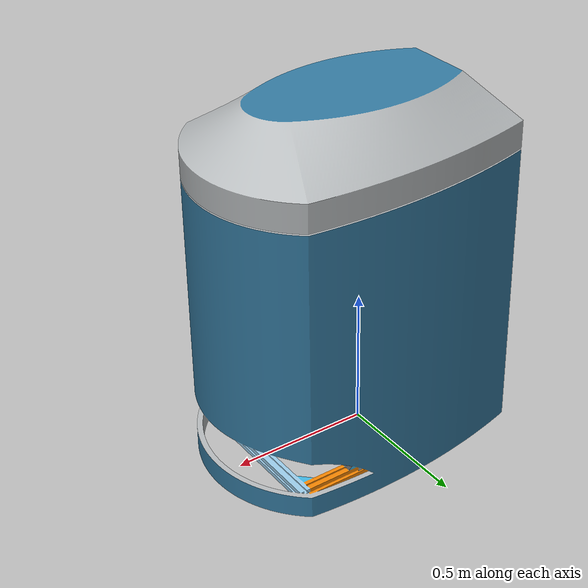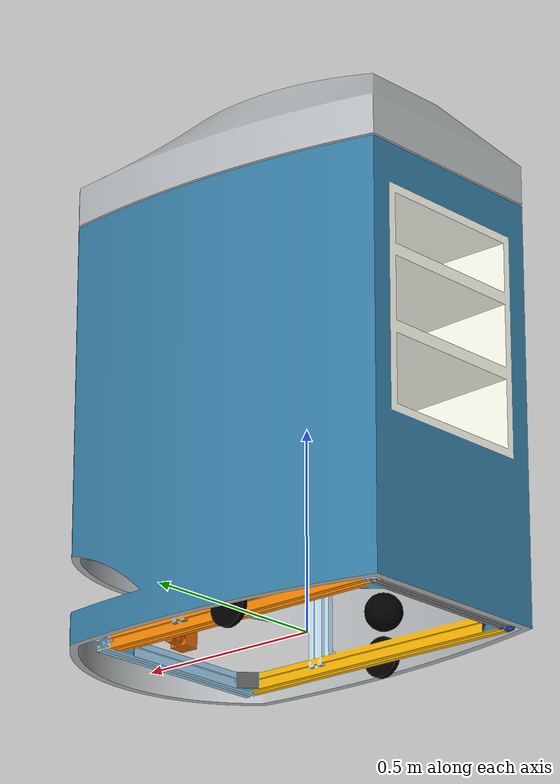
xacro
<?xml version='1.0'?>

<robot name="robot" xmlns:xacro="http://www.ros.org/wiki/xacro">

  <xacro:include filename="$(find robot)/urdf/robot.gazebo" />

  <material name="black">
    <color rgba="0 0 0 1"/>
  </material>

  <link name='robot_footprint'> </link>

  <joint name="robot_footprint_joint" type="fixed">
    <origin xyz="0 0 0" rpy="1.57 0 3.1415" />
<!-- x poits towards back of body, y upwards -->
    <parent link="robot_footprint"/>
    <child link="robot_body" />
  </joint>

  <link name='robot_body'>
    <pose>0 0 0 0 0 0</pose>

    <inertial>
      <mass value="9"/>
      <origin xyz="0 0 0" rpy=" 0 0 0"/>
      <inertia
          ixx="0.4298" ixy="0" ixz="0"
          iyy="0.207" iyz="0"
          izz="0.236"
      />
    </inertial>

    <collision name='robot_collision'>
      <origin xyz="0 0 0" rpy=" 0 0 0"/>
      <geometry>
        <mesh filename="package://robot/meshes/chassis.dae"/>
      </geometry>
    </collision>

    <visual name='robot_visual'>
      <origin xyz="0 0 0" rpy=" 0 0 0"/>
      <geometry>
        <mesh filename="package://robot/meshes/chassis.dae"/>
      </geometry>
    </visual>
  </link>

  <link name='left_wheel'>
    <pose>0 0 0 0 0 0</pose>

    <inertial>
      <mass value="5.35"/>
      <origin xyz="0 0 0" rpy="0 0 0"/>
      <inertia
          ixx="0.000225" ixy="0" ixz="0"
          iyy="0.000225" iyz="0"
          izz="0.0004375"
      />
    </inertial>

    <collision name='left_wheel_collision'>
      <origin xyz="0 0 0" rpy="0 0 0"/>
      <geometry>
        <cylinder radius="0.05" length="0.015"/>
      </geometry>
    </collision>

    <visual name='left_wheel_visual'>
      <origin xyz="0 0 0" rpy="0 0 0"/>
      <geometry>
        <cylinder radius="0.05" length="0.015"/>
      </geometry>
      <material name="black"/>
    </visual>
  </link>

  <link name='right_wheel'>
    <pose>0 0 0 0 0 0</pose>

    <inertial>
      <mass value="5.35"/>
      <origin xyz="0 0 0" rpy="0 0 0"/>
      <inertia
          ixx="0.000225" ixy="0" ixz="0"
          iyy="0.000225" iyz="0"
          izz="0.0004375"
      />
    </inertial>

    <collision name='right_wheel_collision'>
      <origin xyz="0 0 0" rpy="0 0 0"/>
      <geometry>
        <cylinder radius="0.05" length="0.015"/>
      </geometry>
    </collision>

    <visual name='right_wheel_visual'>
      <origin xyz="0 0 0" rpy="0 0 0"/>
      <geometry>
        <cylinder radius="0.05" length="0.015"/>
      </geometry>
      <material name="black"/>
    </visual>
  </link>

  <link name='omni_wheel'>
    <pose>0 0 0 0 0 0</pose>

    <inertial>
      <mass value="0.35"/>
      <origin xyz="0 0 0" rpy="0 0 0"/>
      <inertia
          ixx="0.0056" ixy="0" ixz="0"
          iyy="0.0056" iyz="0"
          izz="0.0056"
      />
    </inertial>

    <collision name='omni_wheel_collision'>
      <origin xyz="0 0 0" rpy="0 0 0"/>
      <geometry>
        <sphere radius="0.045"/>
      </geometry>
    </collision>

    <visual name='omni_wheel_visual'>
      <origin xyz="0 0 0" rpy="0 0 0"/>
      <geometry>
        <sphere radius="0.045"/>
      </geometry>
      <material name="black"/>
    </visual>
  </link>

<!-- links for sensors -->

  <link name='hokuyo'>
    <pose>0 0 0 0 0 0</pose>

    <inertial>
      <mass value="1e-5"/>
      <origin xyz="0 0 0" rpy="0 0 0"/>
      <inertia
          ixx="1e-6" ixy="0" ixz="0"
          iyy="1e-6" iyz="0"
          izz="1e-6"
      />
    </inertial>

    <collision name='LIDAR_collision'>
      <origin xyz="0 0 0" rpy="0 0 0"/>
      <geometry>
        <mesh filename="package://robot/meshes/hokuyo.dae"/>
      </geometry>
    </collision>

    <visual name='LIDAR_visual'>
      <origin xyz="0 0 0" rpy="0 0 0"/>
      <geometry>
        <mesh filename="package://robot/meshes/hokuyo.dae"/>
      </geometry>
    </visual>
  </link>

  <joint type="continuous" name="left_wheel_hinge">
    <origin xyz="0 0 0.27" rpy="0 0 0"/>
    <child link="left_wheel"/>
    <parent link="robot_body"/>
    <axis xyz="0 0 1" rpy="0 0 0"/>
    <limit effort="10000" velocity="1000"/>
    <dynamics damping="1.0" friction="1.0"/>
  </joint>

  <joint type="continuous" name="right_wheel_hinge">
    <origin xyz="0 0 -0.27" rpy="0 0 0"/>
    <child link="right_wheel"/>
    <parent link="robot_body"/>
    <axis xyz="0 0 1" rpy="0 0 0"/>
    <limit effort="10000" velocity="1000"/>
    <dynamics damping="1.0" friction="1.0"/>
  </joint>
  <joint type="continuous" name="omni_wheel_hinge">
    <origin xyz="0.233497 0 0" rpy="0.000212 -0.118296 -0.001802"/>
    <child link="omni_wheel"/>
    <parent link="robot_body"/>
    <axis xyz="0 0 1" rpy="0 0 0"/>
    <limit effort="10000" velocity="1000"/>
    <dynamics damping="1.0" friction="1.0"/>
  </joint>
  <joint name="hokuyo_joint" type="fixed">
    <origin xyz="-0.409 0.07 0" rpy="-1.57 3.14 0"/>
    <parent link="robot_body"/>
    <child link="hokuyo"/>
  </joint>

  <gazebo reference="left_wheel">
    <material>Gazebo/Black</material>
  </gazebo>

  <gazebo reference="right_wheel">
    <material>Gazebo/Black</material>
  </gazebo>

  <gazebo reference="omni_wheel">
    <material>Gazebo/Black</material>
  </gazebo>

</robot>
